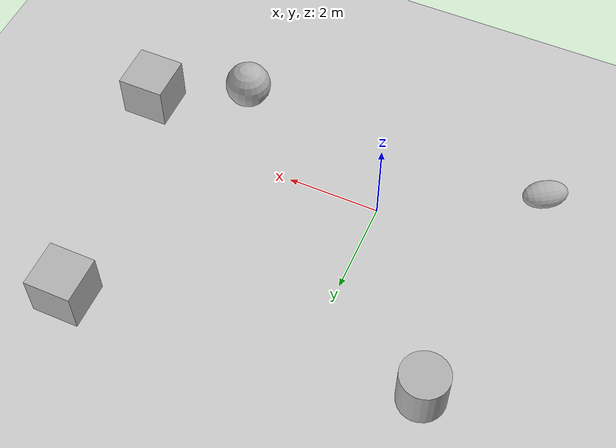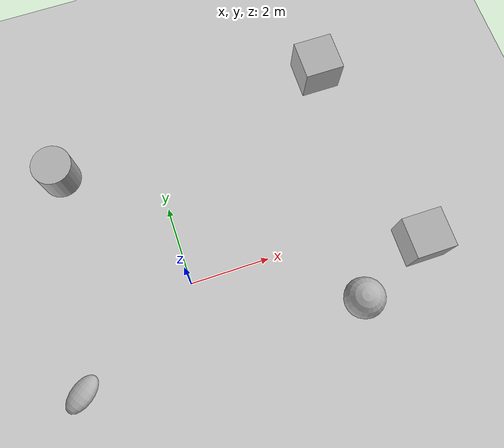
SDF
<sdf version='1.10'>
  <world name='empty'>
    <physics name='1ms' type='ignored'>
      <max_step_size>0.001</max_step_size>
      <real_time_factor>1</real_time_factor>
      <real_time_update_rate>1000</real_time_update_rate>
    </physics>
    <plugin name='gz::sim::systems::Physics' filename='gz-sim-physics-system'/>
    <plugin name='gz::sim::systems::UserCommands' filename='gz-sim-user-commands-system'/>
    <plugin name='gz::sim::systems::SceneBroadcaster' filename='gz-sim-scene-broadcaster-system'/>
    <plugin name='gz::sim::systems::Contact' filename='gz-sim-contact-system'/>
    <plugin name='gz::sim::systems::Sensors' filename='gz-sim-sensors-system'>
      <render_engine>ogre2</render_engine>
    </plugin>
    <gravity>0 0 -9.8000000000000007</gravity>
    <magnetic_field>5.5644999999999998e-06 2.2875799999999999e-05 -4.2388400000000002e-05</magnetic_field>
    <atmosphere type='adiabatic'/>
    <scene>
      <ambient>0.400000006 0.400000006 0.400000006 1</ambient>
      <background>0.699999988 0.699999988 0.699999988 1</background>
      <shadows>true</shadows>
    </scene>
    <model name='ground_plane'>
      <static>true</static>
      <link name='link'>
        <collision name='collision'>
          <geometry>
            <plane>
              <normal>0 0 1</normal>
              <size>100 100</size>
            </plane>
          </geometry>
          <surface>
            <friction>
              <ode/>
            </friction>
            <bounce/>
            <contact/>
          </surface>
        </collision>
        <visual name='visual'>
          <geometry>
            <plane>
              <normal>0 0 1</normal>
              <size>100 100</size>
            </plane>
          </geometry>
          <material>
            <ambient>0.800000012 0.800000012 0.800000012 1</ambient>
            <diffuse>0.800000012 0.800000012 0.800000012 1</diffuse>
            <specular>0.800000012 0.800000012 0.800000012 1</specular>
          </material>
        </visual>
        <pose>0 0 0 0 0 0</pose>
        <inertial>
          <pose>0 0 0 0 0 0</pose>
          <mass>1</mass>
          <inertia>
            <ixx>1</ixx>
            <ixy>0</ixy>
            <ixz>0</ixz>
            <iyy>1</iyy>
            <iyz>0</iyz>
            <izz>1</izz>
          </inertia>
        </inertial>
        <enable_wind>false</enable_wind>
      </link>
      <pose>0 0 0 0 0 0</pose>
      <self_collide>false</self_collide>
    </model>
    <model name='vehicle'>
      <pose>5.678219672750159 -0.75146625427991909 0.49999999999965733 3.9200355110312473e-08 3.9200355111358221e-08 7.585546893169999e-16</pose>
      <link name='vehicle_link'>
        <sensor name='gpu_lidar' type='gpu_lidar'>
          <pose>0 0 0.5 0 0 0</pose>
          <topic>/model/vehicle/lidar_sensor</topic>
          <update_rate>10</update_rate>
          <enable_metrics>false</enable_metrics>
          <lidar>
            <scan>
              <horizontal>
                <samples>640</samples>
                <resolution>1</resolution>
                <min_angle>-1.396263</min_angle>
                <max_angle>1.396263</max_angle>
              </horizontal>
              <vertical>
                <samples>1</samples>
                <min_angle>0</min_angle>
                <max_angle>0</max_angle>
                <resolution>0.01</resolution>
              </vertical>
            </scan>
            <range>
              <min>0.080000000000000002</min>
              <max>10</max>
              <resolution>0.01</resolution>
            </range>
            <noise>
              <type>none</type>
              <mean>0</mean>
              <stddev>0</stddev>
            </noise>
            <visibility_mask>4294967295</visibility_mask>
          </lidar>
        </sensor>
        <inertial>
          <inertia>
            <ixx>0.16666</ixx>
            <ixy>0</ixy>
            <ixz>0</ixz>
            <iyy>0.16666</iyy>
            <iyz>0</iyz>
            <izz>0.16666</izz>
          </inertia>
          <mass>1</mass>
          <pose>0 0 0 0 0 0</pose>
        </inertial>
        <collision name='box_collision'>
          <geometry>
            <box>
              <size>1 1 1</size>
            </box>
          </geometry>
          <surface>
            <friction>
              <ode/>
            </friction>
            <bounce/>
            <contact/>
          </surface>
        </collision>
        <visual name='box_visual'>
          <geometry>
            <box>
              <size>1 1 1</size>
            </box>
          </geometry>
          <material>
            <ambient>0.300000012 0.300000012 0.300000012 1</ambient>
            <diffuse>0.699999988 0.699999988 0.699999988 1</diffuse>
            <specular>1 1 1 1</specular>
          </material>
        </visual>
        <pose>0 0 0 0 0 0</pose>
        <enable_wind>false</enable_wind>
      </link>
      <plugin name='gz::sim::systems::VelocityControl' filename='gz-sim-velocity-control-system'/>
      <plugin name='gz::sim::systems::PosePublisher' filename='gz-sim-pose-publisher-system'>
        <publish_model_pose>true</publish_model_pose>
        <publish_link_pose>false</publish_link_pose>
        <publish_visual_pose>false</publish_visual_pose>
        <publish_collision_pose>false</publish_collision_pose>
        <publish_sensor_pose>false</publish_sensor_pose>
        <use_pose_vector_msg>false</use_pose_vector_msg>
        <update_frequency>30</update_frequency>
        <topic>/model/vehicle/pose</topic>
      </plugin>
      <static>false</static>
      <self_collide>false</self_collide>
    </model>
    <model name='box'>
      <pose>4.8490655480160463 4.4594021753873161 0.49999999990199806 6.2287739151293738e-22 9.3279666454713669e-22 -3.6315533669320137e-22</pose>
      <link name='box_link'>
        <inertial>
          <inertia>
            <ixx>0.16666</ixx>
            <ixy>0</ixy>
            <ixz>0</ixz>
            <iyy>0.16666</iyy>
            <iyz>0</iyz>
            <izz>0.16666</izz>
          </inertia>
          <mass>1</mass>
          <pose>0 0 0 0 0 0</pose>
        </inertial>
        <collision name='box_collision'>
          <geometry>
            <box>
              <size>1 1 1</size>
            </box>
          </geometry>
          <surface>
            <friction>
              <ode/>
            </friction>
            <bounce/>
            <contact/>
          </surface>
        </collision>
        <visual name='box_visual'>
          <geometry>
            <box>
              <size>1 1 1</size>
            </box>
          </geometry>
          <material>
            <ambient>0.300000012 0.300000012 0.300000012 1</ambient>
            <diffuse>0.699999988 0.699999988 0.699999988 1</diffuse>
            <specular>1 1 1 1</specular>
          </material>
        </visual>
        <pose>0 0 0 0 0 0</pose>
        <enable_wind>false</enable_wind>
      </link>
      <static>false</static>
      <self_collide>false</self_collide>
    </model>
    <model name='sphere'>
      <pose>3.787864790657153 -1.6774528659349308 0.499999999902001 0 0 0</pose>
      <link name='sphere_link'>
        <inertial>
          <inertia>
            <ixx>0.10000000000000001</ixx>
            <ixy>0</ixy>
            <ixz>0</ixz>
            <iyy>0.10000000000000001</iyy>
            <iyz>0</iyz>
            <izz>0.10000000000000001</izz>
          </inertia>
          <mass>1</mass>
          <pose>0 0 0 0 0 0</pose>
        </inertial>
        <collision name='sphere_collision'>
          <geometry>
            <sphere>
              <radius>0.5</radius>
            </sphere>
          </geometry>
          <surface>
            <friction>
              <ode/>
            </friction>
            <bounce/>
            <contact/>
          </surface>
        </collision>
        <visual name='sphere_visual'>
          <geometry>
            <sphere>
              <radius>0.5</radius>
            </sphere>
          </geometry>
          <material>
            <ambient>0.300000012 0.300000012 0.300000012 1</ambient>
            <diffuse>0.699999988 0.699999988 0.699999988 1</diffuse>
            <specular>1 1 1 1</specular>
          </material>
        </visual>
        <pose>0 0 0 0 0 0</pose>
        <enable_wind>false</enable_wind>
      </link>
      <static>false</static>
      <self_collide>false</self_collide>
    </model>
    <model name='cylinder'>
      <pose>-2.3817628990689581 3.6558329086413153 0.49999942638036005 8.8238087966328356e-20 -2.2239724252864248e-19 -7.5318404465908385e-21</pose>
      <link name='cylinder_link'>
        <inertial>
          <inertia>
            <ixx>0.14580000000000001</ixx>
            <ixy>0</ixy>
            <ixz>0</ixz>
            <iyy>0.14580000000000001</iyy>
            <iyz>0</iyz>
            <izz>0.125</izz>
          </inertia>
          <mass>1</mass>
          <pose>0 0 0 0 0 0</pose>
        </inertial>
        <collision name='cylinder_collision'>
          <geometry>
            <cylinder>
              <radius>0.5</radius>
              <length>1</length>
            </cylinder>
          </geometry>
          <surface>
            <friction>
              <ode/>
            </friction>
            <bounce/>
            <contact/>
          </surface>
        </collision>
        <visual name='cylinder_visual'>
          <geometry>
            <cylinder>
              <radius>0.5</radius>
              <length>1</length>
            </cylinder>
          </geometry>
          <material>
            <ambient>0.300000012 0.300000012 0.300000012 1</ambient>
            <diffuse>0.699999988 0.699999988 0.699999988 1</diffuse>
            <specular>1 1 1 1</specular>
          </material>
        </visual>
        <pose>0 0 0 0 0 0</pose>
        <enable_wind>false</enable_wind>
      </link>
      <static>false</static>
      <self_collide>false</self_collide>
    </model>
    <model name='ellipsoid'>
      <pose>-3.1202098972475132 -1.7027576297794627 0.2041012871118722 -1.6560848082149926 -1.1863892260526072 2.2707145474827044</pose>
      <link name='ellipsoid_link'>
        <inertial>
          <inertia>
            <ixx>0.068000000000000005</ixx>
            <ixy>0</ixy>
            <ixz>0</ixz>
            <iyy>0.058000000000000003</iyy>
            <iyz>0</iyz>
            <izz>0.025999999999999999</izz>
          </inertia>
          <mass>1</mass>
          <pose>0 0 0 0 0 0</pose>
        </inertial>
        <collision name='ellipsoid_collision'>
          <geometry>
            <ellipsoid>
              <radii>0.20000000000000001 0.29999999999999999 0.5</radii>
            </ellipsoid>
          </geometry>
          <surface>
            <friction>
              <ode/>
            </friction>
            <bounce/>
            <contact/>
          </surface>
        </collision>
        <visual name='ellipsoid_visual'>
          <geometry>
            <ellipsoid>
              <radii>0.20000000000000001 0.29999999999999999 0.5</radii>
            </ellipsoid>
          </geometry>
          <material>
            <ambient>0.300000012 0.300000012 0.300000012 1</ambient>
            <diffuse>0.699999988 0.699999988 0.699999988 1</diffuse>
            <specular>1 1 1 1</specular>
          </material>
        </visual>
        <pose>0 0 0 0 0 0</pose>
        <enable_wind>false</enable_wind>
      </link>
      <static>false</static>
      <self_collide>false</self_collide>
    </model>
    <light name='sun' type='directional'>
      <pose>0 0 10 0 0 0</pose>
      <cast_shadows>true</cast_shadows>
      <intensity>1</intensity>
      <direction>-0.5 0.10000000000000001 -0.90000000000000002</direction>
      <diffuse>0.800000012 0.800000012 0.800000012 1</diffuse>
      <specular>0.200000003 0.200000003 0.200000003 1</specular>
      <attenuation>
        <range>1000</range>
        <linear>0.0099999997764825821</linear>
        <constant>0.89999997615814209</constant>
        <quadratic>0.0010000000474974513</quadratic>
      </attenuation>
      <spot>
        <inner_angle>0</inner_angle>
        <outer_angle>0</outer_angle>
        <falloff>0</falloff>
      </spot>
    </light>
  </world>
</sdf>
